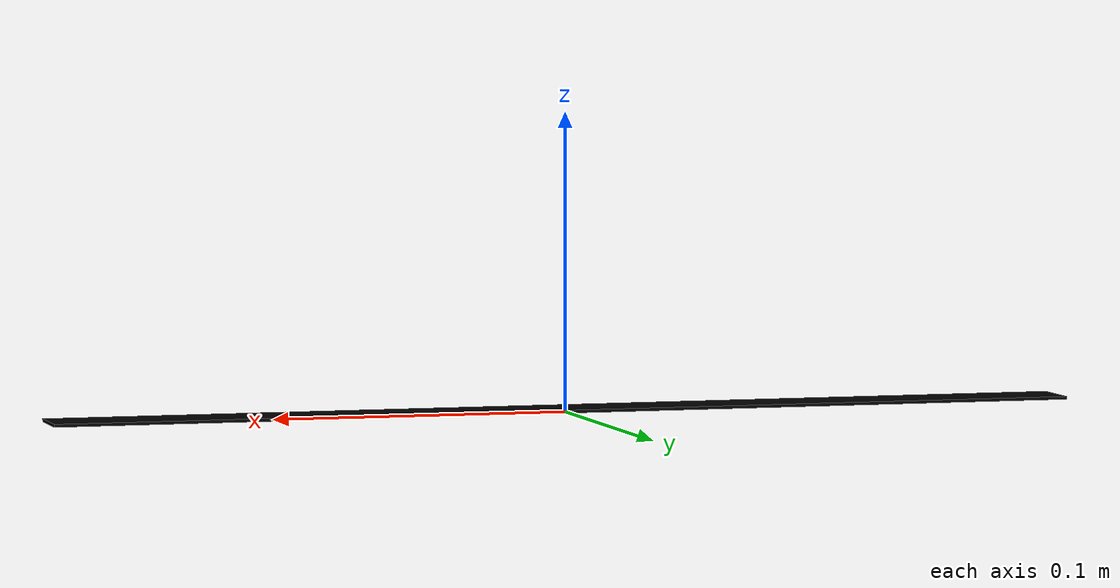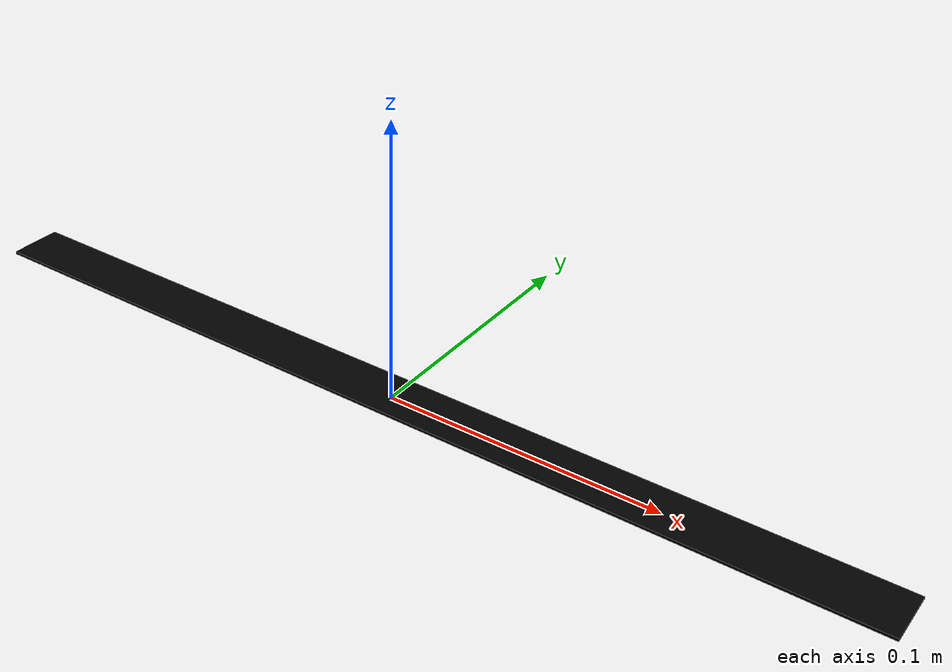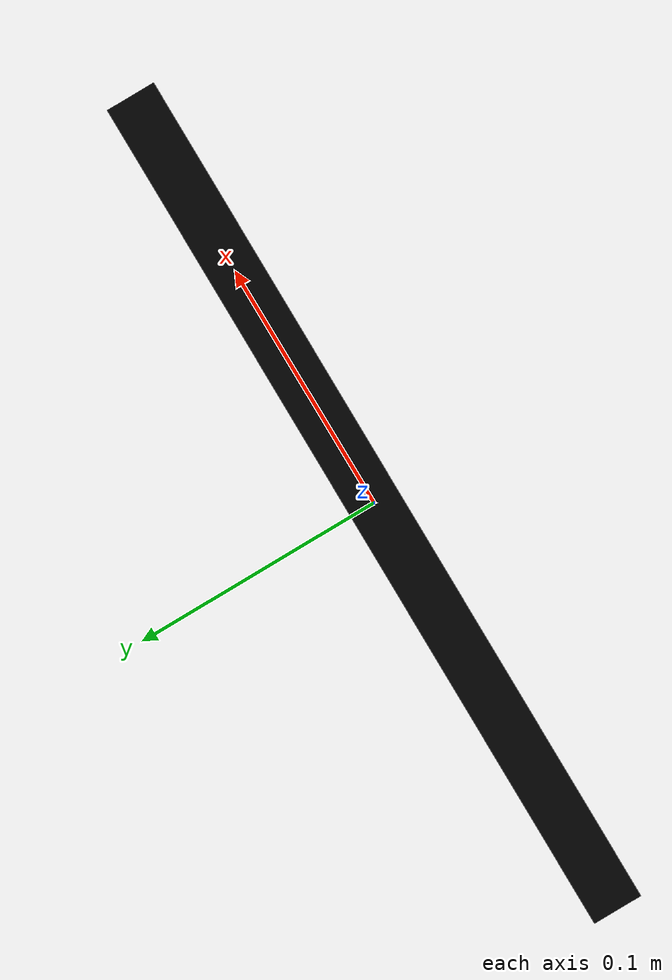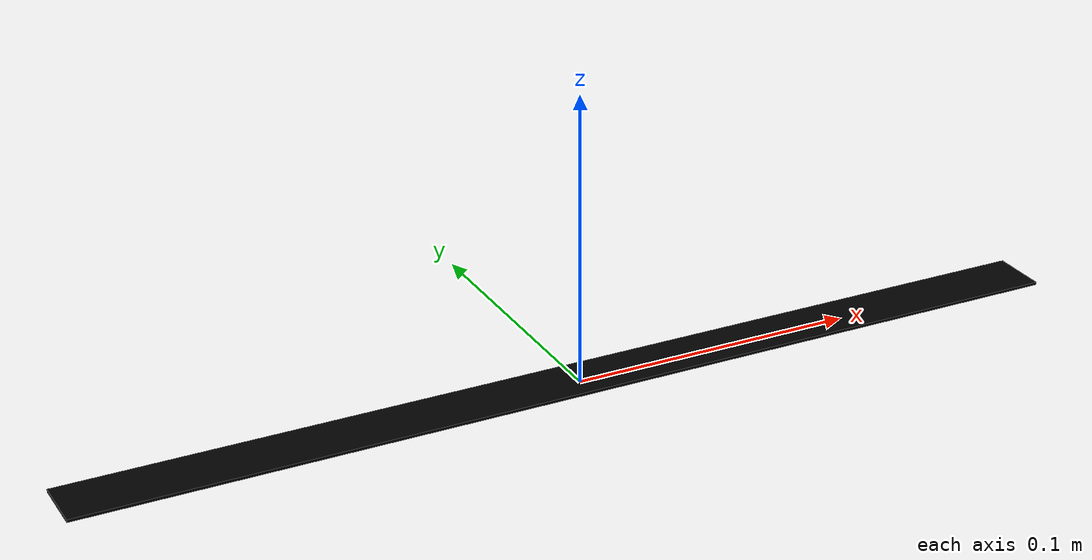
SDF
<?xml version="1.0" ?>
    <sdf version="1.5">
        <model name="line_marker">
  <static>true</static>
  <link name="line_link">
    <visual name="line_visual">
      <geometry>
        <box>
          <size>0.35 0.02 0.001</size> <!-- Largo, ancho, alto -->
        </box>
      </geometry>
      <pose>0 0 0.001 0 0 0</pose> <!-- Ligeramente sobre el suelo para evitar z-fighting -->
      <material>
        <ambient>0 0 0 1</ambient> <!-- Rojo -->
        <diffuse>0 0 0 1</diffuse>
        <specular>0 0 0 1</specular>
      </material>
      <transparency>0.0</transparency>
      <cast_shadows>false</cast_shadows>
    </visual>
  </link>
</model>

    </sdf>
